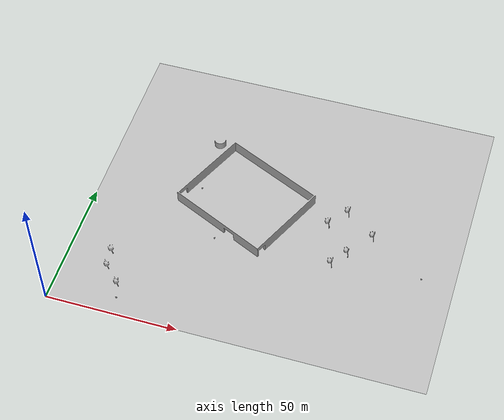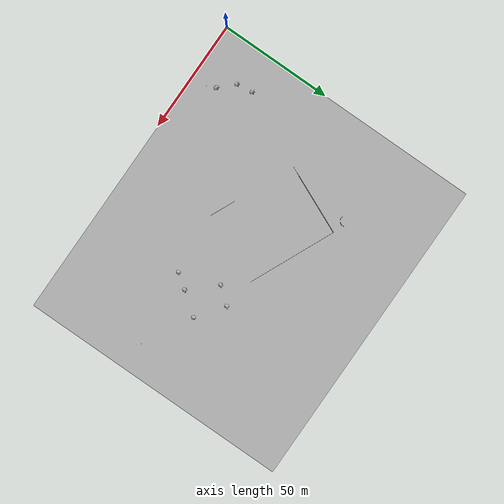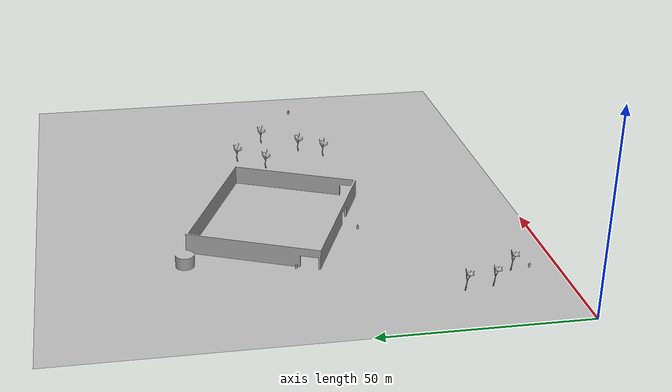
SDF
<sdf version="1.5">
 <world name="world">
  <model name="ground_plane">
   <static>1</static>
   <link name="link">
    <collision name="collision">
     <geometry><plane><normal>0 0 1</normal><size>100 100</size></plane></geometry>
     <surface><friction><ode><mu>100</mu><mu2>50</mu2></ode></friction></surface>
    </collision>
    <velocity_decay><linear>0</linear><angular>0</angular></velocity_decay>
   </link>
  </model>
  <model name="fla_forest2">
   <static>1</static>
   <link name="body">
    <visual name="visual">
     <pose>0 0 -0.001 0 -0 0</pose>
     <geometry><mesh><uri>model://fla_forest2/fla_forest2.dae</uri></mesh></geometry>
    </visual>
    <collision name="fla_forest2">
     <pose>0 0 -0.001 0 -0 0</pose>
     <geometry><mesh><uri>model://fla_forest2/fla_forest2.stl</uri></mesh></geometry>
    </collision>
    <velocity_decay><linear>0</linear><angular>0</angular></velocity_decay>
   </link>
  </model>
  <physics name="default_physics" default="0" type="ode">
   <max_step_size>0.001</max_step_size>
   <real_time_factor>1</real_time_factor>
   <real_time_update_rate>1000</real_time_update_rate>
   <gravity>0 0 -9.8</gravity>
   <magnetic_field>5.5645e-06 2.28758e-05 -4.23884e-05</magnetic_field>
  </physics>
  <scene><ambient>0.4 0.4 0.4 1</ambient><background>0.7 0.7 0.7 1</background><shadows>1</shadows></scene>
  <spherical_coordinates>
   <surface_model>EARTH_WGS84</surface_model>
   <latitude_deg>0</latitude_deg>
   <longitude_deg>0</longitude_deg>
   <elevation>0</elevation>
   <heading_deg>0</heading_deg>
  </spherical_coordinates>
  <light name="user_directional_light_15" type="directional">
   <pose>0 0 1 0 -1 0</pose>
   <diffuse>1 1 1 1</diffuse>
   <specular>0.0980392 0.0980392 0.0980392 1</specular>
   <direction>0.1 0.1 -0.9</direction>
   <attenuation>
    <range>20</range>
    <constant>0.5</constant>
    <linear>0.01</linear>
    <quadratic>0.001</quadratic>
   </attenuation>
  </light>
 </world>
</sdf>
